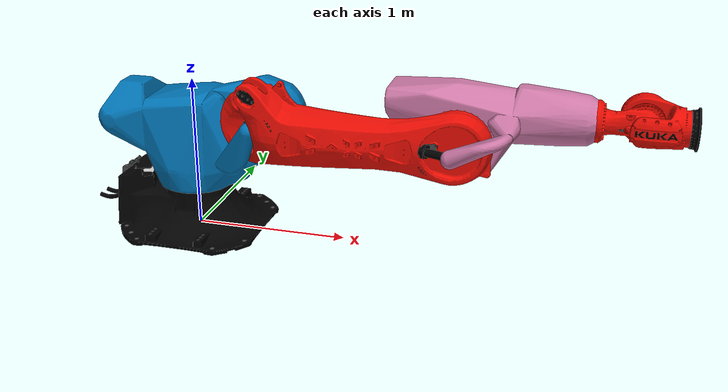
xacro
<?xml version="1.0"?>
<robot xmlns:xacro="http://www.ros.org/wiki/xacro" name="kr500_r2800_2">
  <!-- Import macro files  -->
  <xacro:include filename="$(find kuka_fortec_support)/urdf/kr500_r2800_2_macro.xacro"/>
  <xacro:include filename="$(find kuka_fortec_support)/urdf/kr_fortec_ros2_control_macro.xacro"/>
  <!-- Read additional arguments  -->
  <xacro:arg name="driver_version" default="rsi_only"/>
  <xacro:arg name="mode" default="hardware"/>
  <xacro:arg name="gpio_config" default=""/>
  <xacro:arg name="roundtrip_time" default="0"/>
  <xacro:arg name="client_ip" default="0.0.0.0"/>
  <xacro:arg name="client_port" default="59152"/>
  <xacro:arg name="mxa_client_port" default="1337"/>
  <xacro:arg name="controller_ip" default="0.0.0.0"/>
  <xacro:arg name="verify_robot_model" default="true"/>
  <xacro:arg name="prefix" default=""/>
  <xacro:arg name="x" default="0"/>
  <xacro:arg name="y" default="0"/>
  <xacro:arg name="z" default="0"/>
  <xacro:arg name="roll" default="0"/>
  <xacro:arg name="pitch" default="0"/>
  <xacro:arg name="yaw" default="0"/>
  <xacro:arg name="rsi_xml_config_file" default=""/>
  <xacro:kuka_fortec_ros2_control name="$(arg prefix)kr500_r2800_2" driver_version="$(arg driver_version)" client_ip="$(arg client_ip)" client_port="$(arg client_port)" mxa_client_port="$(arg mxa_client_port)" controller_ip="$(arg controller_ip)" prefix="$(arg prefix)" mode="$(arg mode)" gpio_config="$(arg gpio_config)" roundtrip_time="$(arg roundtrip_time)" verify_robot_model="$(arg verify_robot_model)" rsi_xml_config_file="$(arg rsi_xml_config_file)">
    <ext_axes_ros2_control_joints/>
  </xacro:kuka_fortec_ros2_control>
  <!-- world link -->
  <link name="world"/>
  <!-- robot links, joints -->
  <xacro:kuka_kr500_r2800_2_robot prefix="$(arg prefix)" package_name="kuka_fortec_support"/>
  <!-- default world - base_link joint -->
  <joint name="$(arg prefix)world-base_link" type="fixed">
    <parent link="world"/>
    <child link="$(arg prefix)base_link"/>
    <origin xyz="$(arg x) $(arg y) $(arg z)" rpy="$(arg roll) $(arg pitch) $(arg yaw)"/>
  </joint>
</robot>

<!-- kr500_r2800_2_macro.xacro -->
<robot xmlns:xacro="http://www.ros.org/wiki/xacro" name="kr500_r2800_2">
  <xacro:macro name="kuka_kr500_r2800_2_robot" params="prefix package_name">
    <link name="${prefix}base"/>
    <link name="${prefix}base_link">
      <collision>
        <geometry>
          <mesh filename="package://${package_name}/meshes/kr500_r2800_2/collision/base_link.stl"/>
        </geometry>
        <origin rpy="0.0 -0.0 0.0" xyz="0.0 0.0 0.0"/>
      </collision>
      <inertial>
        <inertia ixx="21.9930807676636" ixy="0.0" ixz="0.0" iyy="21.5418512925277" iyz="0.0" izz="29.2352924869171"/>
        <mass value="3.152E2"/>
        <origin rpy="0.11123527683716293 -2.994546457741E-4 -1.5305254859363797" xyz="-0.029666878172588798 7.58153553299496E-4 0.22417449873096398"/>
      </inertial>
      <visual>
        <geometry>
          <mesh filename="package://${package_name}/meshes/kr500_r2800_2/visual/base_link.dae"/>
        </geometry>
        <origin rpy="0.0 -0.0 0.0" xyz="0.0 0.0 0.0"/>
      </visual>
    </link>
    <link name="${prefix}flange"/>
    <link name="${prefix}link_1">
      <collision>
        <geometry>
          <mesh filename="package://${package_name}/meshes/kr500_r2800_2/collision/link_1.stl"/>
        </geometry>
        <origin rpy="-3.141592653589793 0.0 -0.0" xyz="0.0 -4.46506222969125e-17 0.36460000000000004"/>
      </collision>
      <inertial>
        <inertia ixx="27.7130089870907" ixy="0.0" ixz="0.0" iyy="81.8479857219255" iyz="0.0" izz="86.993906473942"/>
        <mass value="5.8748E2"/>
        <origin rpy="-2.0347970267963547 -0.13368764809364478 3.0214419124870866" xyz="0.136871076462177 0.0185058623272282 -0.331140280520188"/>
      </inertial>
      <visual>
        <geometry>
          <mesh filename="package://${package_name}/meshes/kr500_r2800_2/visual/link_1.dae"/>
        </geometry>
        <origin rpy="-3.141592653589793 0.0 -0.0" xyz="0.0 -4.46506222969125e-17 0.36460000000000004"/>
      </visual>
    </link>
    <link name="${prefix}link_2">
      <collision>
        <geometry>
          <mesh filename="package://${package_name}/meshes/kr500_r2800_2/collision/link_2.stl"/>
        </geometry>
        <origin rpy="1.5707963267948968 -0.0 1.5707963267948966" xyz="-0.8 -0.49999999999999994 0.0755000000000001"/>
      </collision>
      <inertial>
        <inertia ixx="92.9392509763503" ixy="0.0" ixz="0.0" iyy="8.91730082037883" iyz="0.0" izz="96.4406811074796"/>
        <mass value="3.182E2"/>
        <origin rpy="0.07833792367748116 -0.17424217038790715 1.5850305532107791" xyz="0.564836769327467 -0.0178618793211816 -0.162911156505343"/>
      </inertial>
      <visual>
        <geometry>
          <mesh filename="package://${package_name}/meshes/kr500_r2800_2/visual/link_2.dae"/>
        </geometry>
        <origin rpy="1.5707963267948968 -0.0 1.5707963267948966" xyz="-0.8 -0.49999999999999994 0.0755000000000001"/>
      </visual>
    </link>
    <link name="${prefix}link_3">
      <collision>
        <geometry>
          <mesh filename="package://${package_name}/meshes/kr500_r2800_2/collision/link_3.stl"/>
        </geometry>
        <origin rpy="1.5707963267948968 -0.0 -0.0" xyz="-0.5000000000000001 2.05 0.1928000000000001"/>
      </collision>
      <inertial>
        <inertia ixx="26.1045171498064" ixy="0.0" ixz="0.0" iyy="7.30032158906769" iyz="0.0" izz="28.5279993366188"/>
        <mass value="2.8776E2"/>
        <origin rpy="3.037118292360582 0.6806120900254827 1.4381244389443988" xyz="0.109500270252645 -0.08215199391124961 0.13462983736447"/>
      </inertial>
      <visual>
        <geometry>
          <mesh filename="package://${package_name}/meshes/kr500_r2800_2/visual/link_3.dae"/>
        </geometry>
        <origin rpy="1.5707963267948968 -0.0 -0.0" xyz="-0.5000000000000001 2.05 0.1928000000000001"/>
      </visual>
    </link>
    <link name="${prefix}link_4">
      <collision>
        <geometry>
          <mesh filename="package://${package_name}/meshes/kr500_r2800_2/collision/link_4.stl"/>
        </geometry>
        <origin rpy="1.8369701987210297e-16 1.5707963267948966 0.0" xyz="-2.2 -6.468081985310399e-18 1.2217"/>
      </collision>
      <inertial>
        <inertia ixx="0.588262129245409" ixy="0.0" ixz="0.0" iyy="2.44610799395353" iyz="0.0" izz="2.52339712263877"/>
        <mass value="9.1737E1"/>
        <origin rpy="1.5710798504855987 -1.2812030543896167 -1.5707871244530578" xyz="-3.84326934605306E-7 0.0412027304141186 -0.18393176853396098"/>
      </inertial>
      <visual>
        <geometry>
          <mesh filename="package://${package_name}/meshes/kr500_r2800_2/visual/link_4.dae"/>
        </geometry>
        <origin rpy="1.8369701987210297e-16 1.5707963267948966 0.0" xyz="-2.2 -6.468081985310399e-18 1.2217"/>
      </visual>
    </link>
    <link name="${prefix}link_5">
      <collision>
        <geometry>
          <mesh filename="package://${package_name}/meshes/kr500_r2800_2/collision/link_5.stl"/>
        </geometry>
        <origin rpy="1.5707963267948968 -3.749399456654644e-33 -6.123233995736766e-17" xyz="-1.5394999999999999 2.2 -0.11930000000000007"/>
      </collision>
      <inertial>
        <inertia ixx="0.633268889418767" ixy="0.0" ixz="0.0" iyy="0.845638406192095" iyz="0.0" izz="0.966026834855894"/>
        <mass value="4.66909E1"/>
        <origin rpy="-1.5743136711698134 -0.8681547114390599 3.1388379012288095" xyz="0.0685714603997781 6.6639030303550805E-6 -0.0959552886339736"/>
      </inertial>
      <visual>
        <geometry>
          <mesh filename="package://${package_name}/meshes/kr500_r2800_2/visual/link_5.dae"/>
        </geometry>
        <origin rpy="1.5707963267948968 -3.749399456654644e-33 -6.123233995736766e-17" xyz="-1.5394999999999999 2.2 -0.11930000000000007"/>
      </visual>
    </link>
    <link name="${prefix}link_6">
      <collision>
        <geometry>
          <mesh filename="package://${package_name}/meshes/kr500_r2800_2/collision/link_6.stl"/>
        </geometry>
        <origin rpy="1.2246467991473532e-16 1.5707963267948966 0.0" xyz="-2.2 -1.4544816807359357e-16 1.7446999999999997"/>
      </collision>
      <inertial>
        <inertia ixx="0.101067049553456" ixy="0.0" ixz="0.0" iyy="0.101104653019609" iyz="0.0" izz="0.132839401205687"/>
        <mass value="2.33927E1"/>
        <origin rpy="0.002056178833581877 6.239270510690617E-5 -0.004602704125718318" xyz="5.29780658068543E-6 -7.16762066798617E-5 -0.023615065041658303"/>
      </inertial>
      <visual>
        <geometry>
          <mesh filename="package://${package_name}/meshes/kr500_r2800_2/visual/link_6.dae"/>
        </geometry>
        <origin rpy="1.2246467991473532e-16 1.5707963267948966 0.0" xyz="-2.2 -1.4544816807359357e-16 1.7446999999999997"/>
      </visual>
    </link>
    <link name="${prefix}tool0"/>
    <joint name="${prefix}base_link-base" type="fixed">
      <child link="${prefix}base"/>
      <parent link="${prefix}base_link"/>
    </joint>
    <joint name="${prefix}joint_1" type="revolute">
      <axis xyz="0.0 0.0 1.0"/>
      <child link="${prefix}link_1"/>
      <limit effort="1.344E4" lower="-3.2288591125E0" upper="3.2288591125E0" velocity="1.74532925199433E0"/>
      <origin rpy="3.141592653589793 -0.0 0.0" xyz="0.0 0.0 0.36460000000000004"/>
      <parent link="${prefix}base_link"/>
    </joint>
    <joint name="${prefix}joint_2" type="revolute">
      <axis xyz="0.0 0.0 1.0"/>
      <child link="${prefix}link_2"/>
      <limit effort="1.836E4" lower="-2.268928025E0" upper="8.72664625E-2" velocity="1.38831658329915E0"/>
      <origin rpy="1.5707963267948966 -0.0 0.0" xyz="0.5 0.0755 -0.4354"/>
      <parent link="${prefix}link_1"/>
    </joint>
    <joint name="${prefix}joint_3" type="revolute">
      <axis xyz="0.0 0.0 1.0"/>
      <child link="${prefix}link_3"/>
      <limit effort="1.1026993040108E4" lower="-1.919862175E0" upper="2.827433385E0" velocity="1.5707963267949E0"/>
      <origin rpy="0.0 -0.0 0.0" xyz="1.25 0.0 -0.1173"/>
      <parent link="${prefix}link_2"/>
    </joint>
    <joint name="${prefix}joint_4" type="revolute">
      <axis xyz="0.0 0.0 1.0"/>
      <child link="${prefix}link_4"/>
      <limit effort="5.35909461871641E3" lower="-6.108652375E0" upper="6.108652375E0" velocity="1.5707963267949E0"/>
      <origin rpy="1.5707963267948966 -0.0 -1.5707963267948966" xyz="0.7217 -0.15 0.19280000000000003"/>
      <parent link="${prefix}link_3"/>
    </joint>
    <joint name="${prefix}joint_5" type="revolute">
      <axis xyz="0.0 0.0 1.0"/>
      <child link="${prefix}link_5"/>
      <limit effort="5.36393964557179E3" lower="-2.0943951E0" upper="2.0943951E0" velocity="1.74532925199433E0"/>
      <origin rpy="0.0 1.5707963267948966 1.5707963267948966" xyz="0.0 0.1193 -0.3178"/>
      <parent link="${prefix}link_4"/>
    </joint>
    <joint name="${prefix}joint_6" type="revolute">
      <axis xyz="0.0 0.0 1.0"/>
      <child link="${prefix}link_6"/>
      <limit effort="3.11265024319794E3" lower="-6.108652375E0" upper="6.108652375E0" velocity="2.84488668075076E0"/>
      <origin rpy="1.5707963267948966 -0.0 -1.5707963267948966" xyz="0.2052 0.0 -0.1193"/>
      <parent link="${prefix}link_5"/>
    </joint>
    <joint name="${prefix}link6-flange" type="fixed">
      <child link="${prefix}flange"/>
      <origin rpy="0.0 1.5707963267948966 0.0" xyz="0.0 0.0 -0.0808"/>
      <parent link="${prefix}link_6"/>
    </joint>
    <joint name="${prefix}link6-tool0" type="fixed">
      <child link="${prefix}tool0"/>
      <origin rpy="3.141592653589793 1.2246467991473532E-16 3.141592653589793" xyz="0.0 0.0 -0.0808"/>
      <parent link="${prefix}link_6"/>
    </joint>
  </xacro:macro>
</robot>
